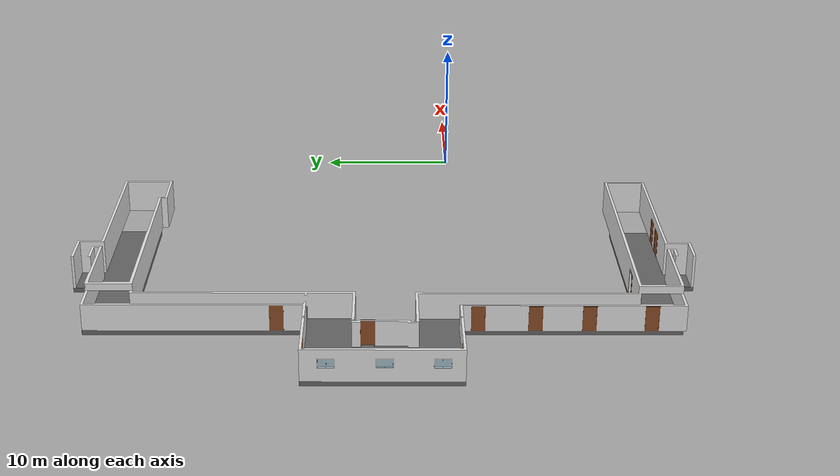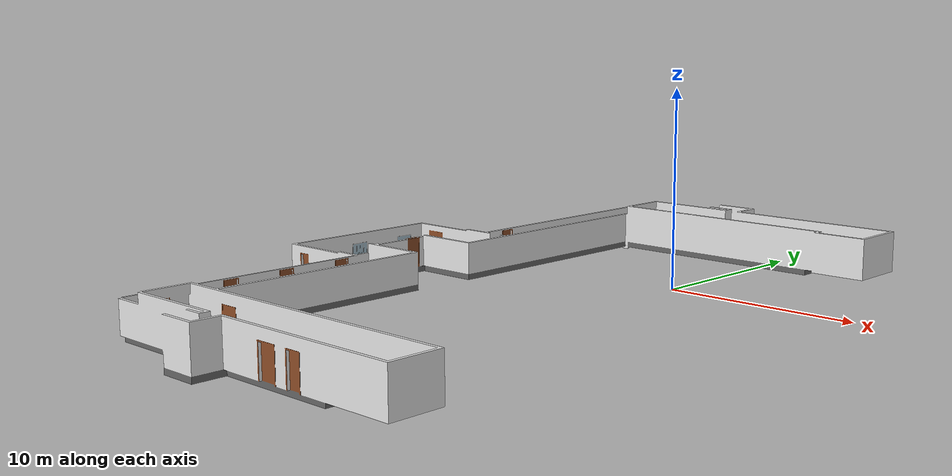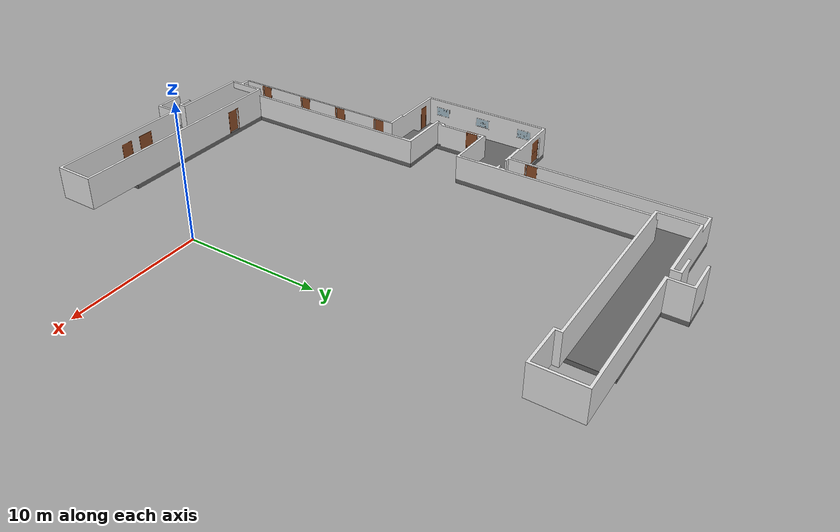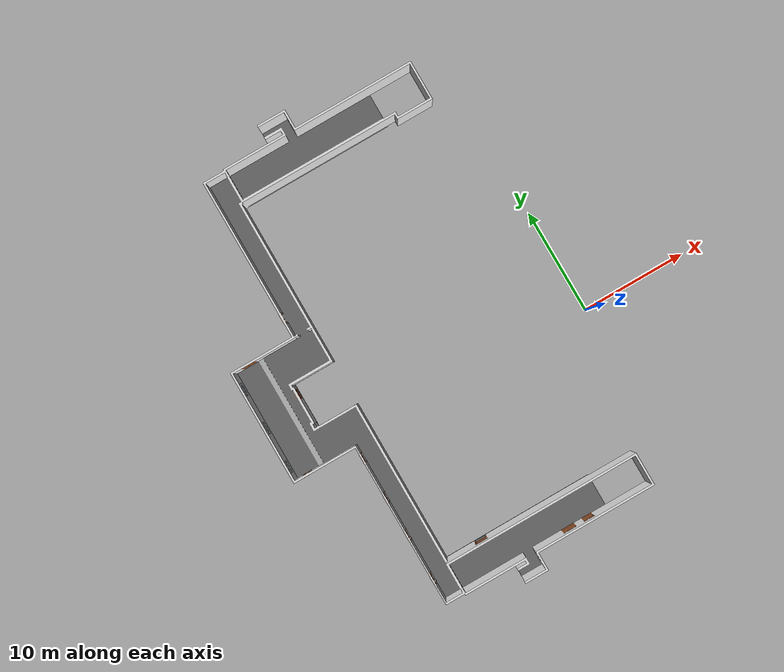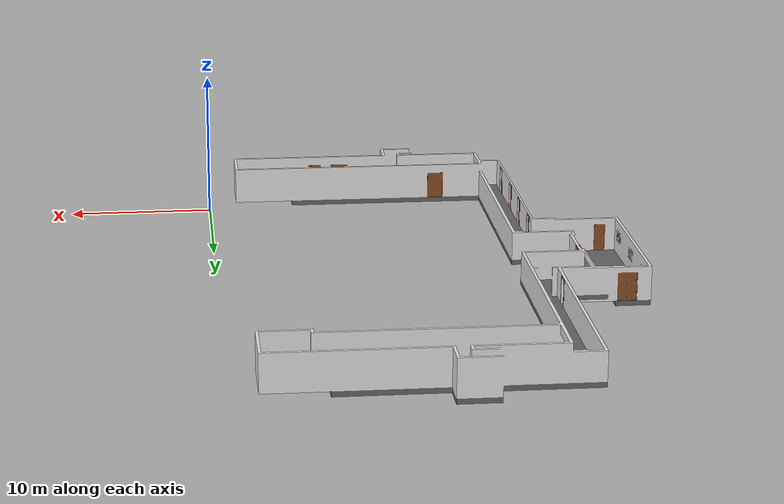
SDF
<?xml version="1.0"?>
<sdf version="1.6">
  <model name="hall">
    <static>true</static>
    <link name="walls">
      <collision name="collision">
        <geometry>
          <mesh>
            <uri>file:///home/work/git_unitree_go1/src/unitree_gazebo/worlds/building_editor_models/hall/meshes/hall.dae</uri>
          </mesh>
        </geometry>
      </collision>
      <visual name="visual">
        <geometry>
          <mesh>
            <uri>file:///home/work/git_unitree_go1/src/unitree_gazebo/worlds/building_editor_models/hall/meshes/hall.dae</uri>
          </mesh>
        </geometry>
        <transparency> 0.1 </transparency>
      </visual>
    </link>
  </model>
</sdf>
